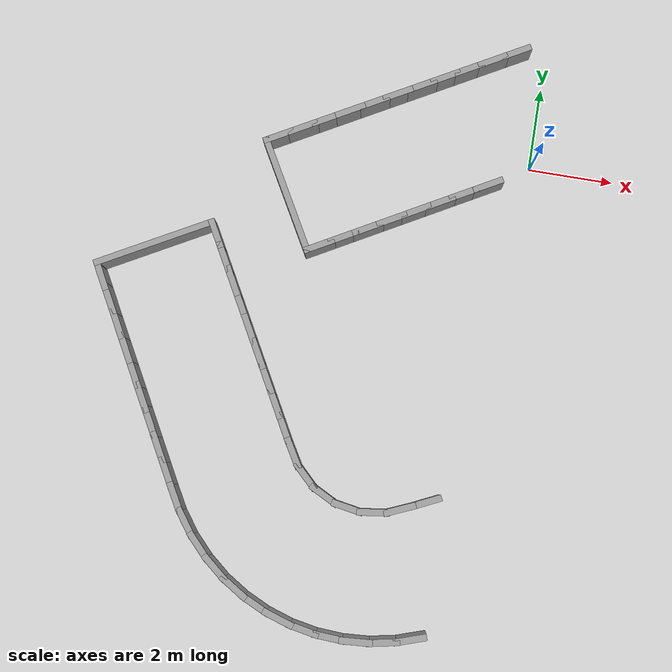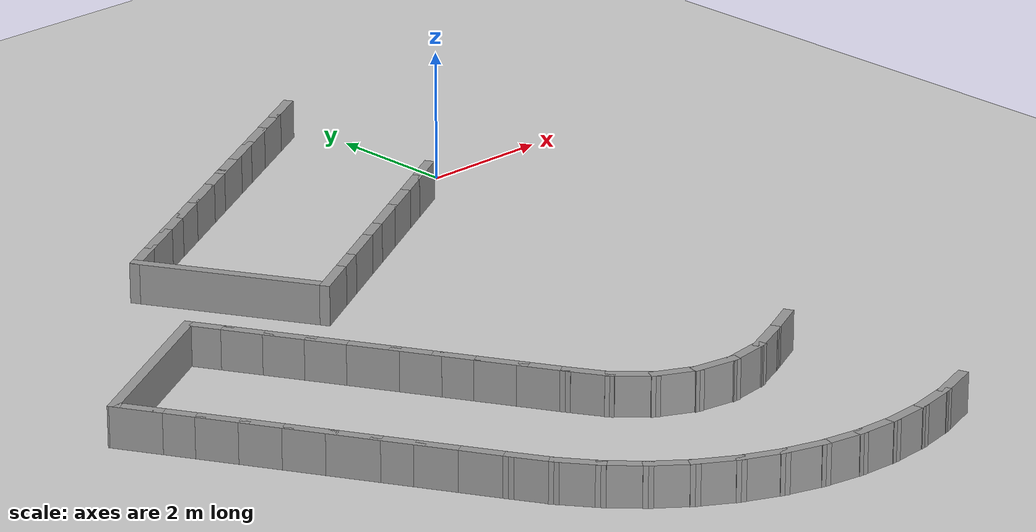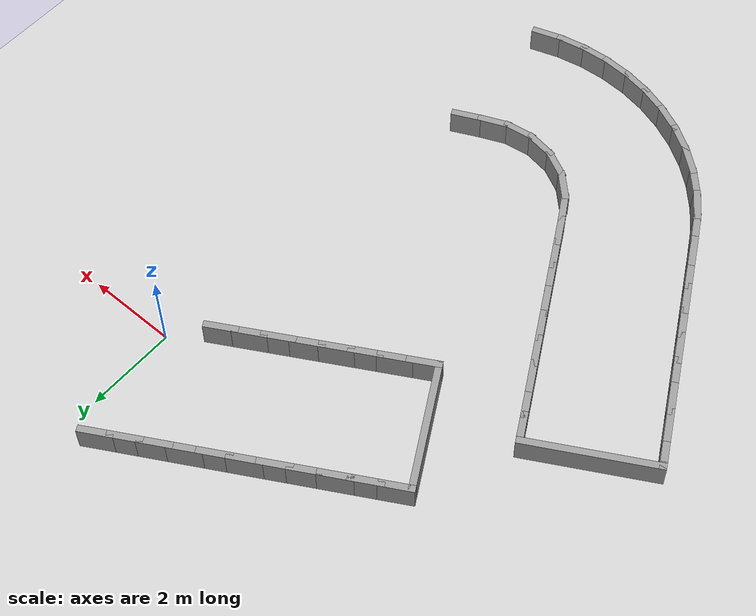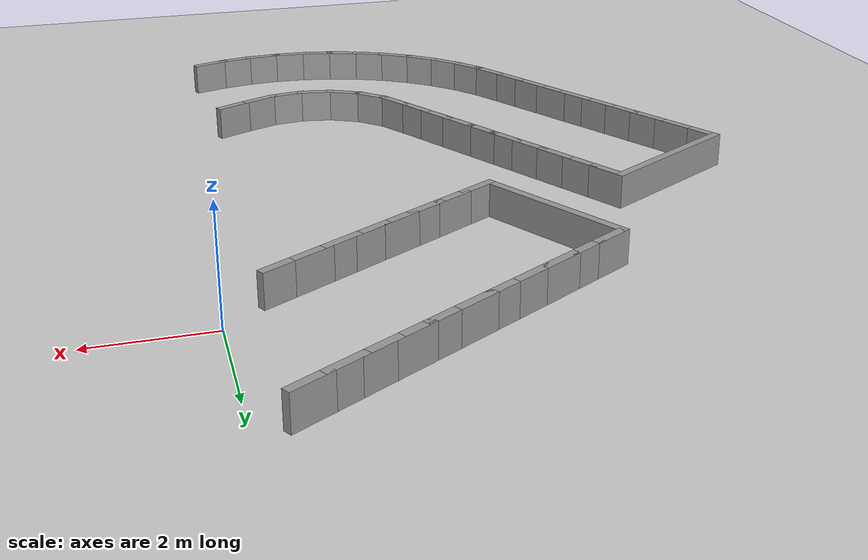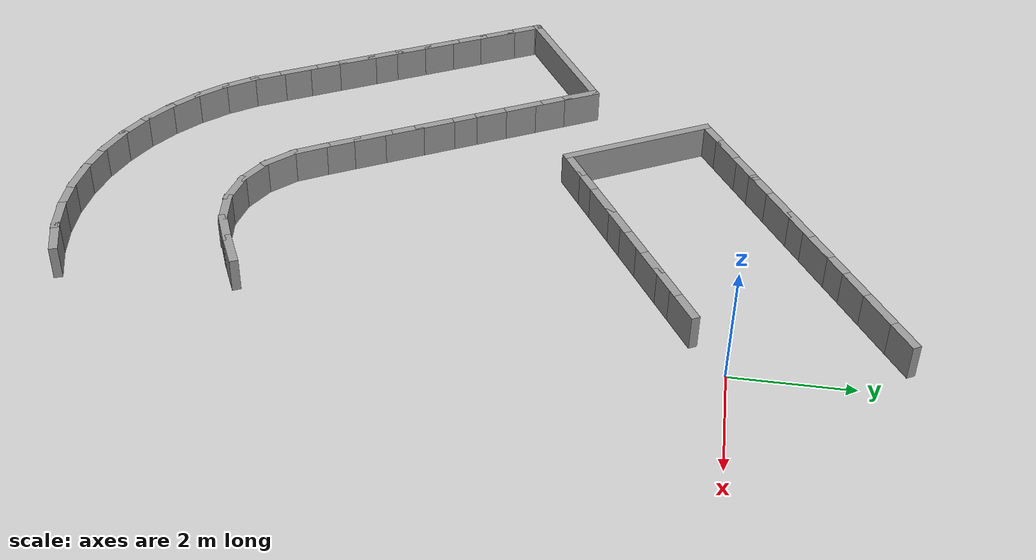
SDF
<sdf version="1.7">
 <world name="default">
  <model name="ground_plane">
   <static>1</static>
   <link name="link">
    <collision name="collision">
     <geometry><plane><normal>0 0 1</normal><size>100 100</size></plane></geometry>
     <surface><friction><ode><mu>100</mu><mu2>50</mu2></ode></friction></surface>
    </collision>
    <visual name="visual">
     <cast_shadows>0</cast_shadows>
     <geometry><plane><normal>0 0 1</normal><size>100 100</size></plane></geometry>
     <material>
      <script><uri>file://media/materials/scripts/gazebo.material</uri><name>Gazebo/Grey</name></script>
     </material>
    </visual>
   </link>
  </model>
  <model name="rand_turn_11">
   <link name="Wall_0">
    <collision name="Wall_0_Collision">
     <geometry><box><size>0.7500 0.1500 0.6000</size></box></geometry>
     <pose>0 0 0.3000 0 -0 0</pose>
    </collision>
    <visual name="Wall_0_Visual">
     <pose>0 0 0.3000 0 -0 0</pose>
     <geometry><box><size>0.7500 0.1500 0.6000</size></box></geometry>
     <material>
      <script><uri>file://media/materials/scripts/gazebo.material</uri><name>Gazebo/Grey</name></script>
      <ambient>1 1 1 1</ambient>
     </material>
    </visual>
    <pose>-5.9878 -0.3365 0 0 -0 0.51695</pose>
   </link>
   <link name="Wall_1">
    <collision name="Wall_1_Collision">
     <geometry><box><size>0.7500 0.1500 0.6000</size></box></geometry>
     <pose>0 0 0.3000 0 -0 0</pose>
    </collision>
    <visual name="Wall_1_Visual">
     <pose>0 0 0.3000 0 -0 0</pose>
     <geometry><box><size>0.7500 0.1500 0.6000</size></box></geometry>
     <material>
      <script><uri>file://media/materials/scripts/gazebo.material</uri><name>Gazebo/Grey</name></script>
      <ambient>1 1 1 1</ambient>
     </material>
    </visual>
    <pose>-5.4662 -0.0400 0 0 -0 0.51695</pose>
   </link>
   <link name="Wall_2">
    <collision name="Wall_2_Collision">
     <geometry><box><size>0.7500 0.1500 0.6000</size></box></geometry>
     <pose>0 0 0.3000 0 -0 0</pose>
    </collision>
    <visual name="Wall_2_Visual">
     <pose>0 0 0.3000 0 -0 0</pose>
     <geometry><box><size>0.7500 0.1500 0.6000</size></box></geometry>
     <material>
      <script><uri>file://media/materials/scripts/gazebo.material</uri><name>Gazebo/Grey</name></script>
      <ambient>1 1 1 1</ambient>
     </material>
    </visual>
    <pose>-4.9446 0.2566 0 0 -0 0.51695</pose>
   </link>
   <link name="Wall_3">
    <collision name="Wall_3_Collision">
     <geometry><box><size>0.7500 0.1500 0.6000</size></box></geometry>
     <pose>0 0 0.3000 0 -0 0</pose>
    </collision>
    <visual name="Wall_3_Visual">
     <pose>0 0 0.3000 0 -0 0</pose>
     <geometry><box><size>0.7500 0.1500 0.6000</size></box></geometry>
     <material>
      <script><uri>file://media/materials/scripts/gazebo.material</uri><name>Gazebo/Grey</name></script>
      <ambient>1 1 1 1</ambient>
     </material>
    </visual>
    <pose>-4.4230 0.5531 0 0 -0 0.51695</pose>
   </link>
   <link name="Wall_4">
    <collision name="Wall_4_Collision">
     <geometry><box><size>0.7500 0.1500 0.6000</size></box></geometry>
     <pose>0 0 0.3000 0 -0 0</pose>
    </collision>
    <visual name="Wall_4_Visual">
     <pose>0 0 0.3000 0 -0 0</pose>
     <geometry><box><size>0.7500 0.1500 0.6000</size></box></geometry>
     <material>
      <script><uri>file://media/materials/scripts/gazebo.material</uri><name>Gazebo/Grey</name></script>
      <ambient>1 1 1 1</ambient>
     </material>
    </visual>
    <pose>-3.9014 0.8496 0 0 -0 0.51695</pose>
   </link>
   <link name="Wall_5">
    <collision name="Wall_5_Collision">
     <geometry><box><size>0.7500 0.1500 0.6000</size></box></geometry>
     <pose>0 0 0.3000 0 -0 0</pose>
    </collision>
    <visual name="Wall_5_Visual">
     <pose>0 0 0.3000 0 -0 0</pose>
     <geometry><box><size>0.7500 0.1500 0.6000</size></box></geometry>
     <material>
      <script><uri>file://media/materials/scripts/gazebo.material</uri><name>Gazebo/Grey</name></script>
      <ambient>1 1 1 1</ambient>
     </material>
    </visual>
    <pose>-3.3798 1.1462 0 0 -0 0.51695</pose>
   </link>
   <link name="Wall_6">
    <collision name="Wall_6_Collision">
     <geometry><box><size>0.7500 0.1500 0.6000</size></box></geometry>
     <pose>0 0 0.3000 0 -0 0</pose>
    </collision>
    <visual name="Wall_6_Visual">
     <pose>0 0 0.3000 0 -0 0</pose>
     <geometry><box><size>0.7500 0.1500 0.6000</size></box></geometry>
     <material>
      <script><uri>file://media/materials/scripts/gazebo.material</uri><name>Gazebo/Grey</name></script>
      <ambient>1 1 1 1</ambient>
     </material>
    </visual>
    <pose>-2.8582 1.4427 0 0 -0 0.51695</pose>
   </link>
   <link name="Wall_7">
    <collision name="Wall_7_Collision">
     <geometry><box><size>0.7500 0.1500 0.6000</size></box></geometry>
     <pose>0 0 0.3000 0 -0 0</pose>
    </collision>
    <visual name="Wall_7_Visual">
     <pose>0 0 0.3000 0 -0 0</pose>
     <geometry><box><size>0.7500 0.1500 0.6000</size></box></geometry>
     <material>
      <script><uri>file://media/materials/scripts/gazebo.material</uri><name>Gazebo/Grey</name></script>
      <ambient>1 1 1 1</ambient>
     </material>
    </visual>
    <pose>-2.3366 1.7393 0 0 -0 0.51695</pose>
   </link>
   <link name="Wall_8">
    <collision name="Wall_8_Collision">
     <geometry><box><size>0.7500 0.1500 0.6000</size></box></geometry>
     <pose>0 0 0.3000 0 -0 0</pose>
    </collision>
    <visual name="Wall_8_Visual">
     <pose>0 0 0.3000 0 -0 0</pose>
     <geometry><box><size>0.7500 0.1500 0.6000</size></box></geometry>
     <material>
      <script><uri>file://media/materials/scripts/gazebo.material</uri><name>Gazebo/Grey</name></script>
      <ambient>1 1 1 1</ambient>
     </material>
    </visual>
    <pose>-1.8150 2.0358 0 0 -0 0.51695</pose>
   </link>
   <link name="Wall_9">
    <collision name="Wall_9_Collision">
     <geometry><box><size>0.7500 0.1500 0.6000</size></box></geometry>
     <pose>0 0 0.3000 0 -0 0</pose>
    </collision>
    <visual name="Wall_9_Visual">
     <pose>0 0 0.3000 0 -0 0</pose>
     <geometry><box><size>0.7500 0.1500 0.6000</size></box></geometry>
     <material>
      <script><uri>file://media/materials/scripts/gazebo.material</uri><name>Gazebo/Grey</name></script>
      <ambient>1 1 1 1</ambient>
     </material>
    </visual>
    <pose>-1.2934 2.3323 0 0 -0 0.51695</pose>
   </link>
   <link name="Wall_10">
    <collision name="Wall_10_Collision">
     <geometry><box><size>0.7500 0.1500 0.6000</size></box></geometry>
     <pose>0 0 0.3000 0 -0 0</pose>
    </collision>
    <visual name="Wall_10_Visual">
     <pose>0 0 0.3000 0 -0 0</pose>
     <geometry><box><size>0.7500 0.1500 0.6000</size></box></geometry>
     <material>
      <script><uri>file://media/materials/scripts/gazebo.material</uri><name>Gazebo/Grey</name></script>
      <ambient>1 1 1 1</ambient>
     </material>
    </visual>
    <pose>-0.7718 2.6289 0 0 -0 0.51695</pose>
   </link>
   <link name="Wall_77">
    <collision name="Wall_77_Collision">
     <geometry><box><size>0.7496 0.1500 0.6000</size></box></geometry>
     <pose>0 0 0.3000 0 -0 0</pose>
    </collision>
    <visual name="Wall_77_Visual">
     <pose>0 0 0.3000 0 -0 0</pose>
     <geometry><box><size>0.7496 0.1500 0.6000</size></box></geometry>
     <material>
      <script><uri>file://media/materials/scripts/gazebo.material</uri><name>Gazebo/Grey</name></script>
      <ambient>1 1 1 1</ambient>
     </material>
    </visual>
    <pose>-1.1106 -11.1781 0 0 -0 -2.81876</pose>
   </link>
   <link name="Wall_78">
    <collision name="Wall_78_Collision">
     <geometry><box><size>0.7496 0.1500 0.6000</size></box></geometry>
     <pose>0 0 0.3000 0 -0 0</pose>
    </collision>
    <visual name="Wall_78_Visual">
     <pose>0 0 0.3000 0 -0 0</pose>
     <geometry><box><size>0.7496 0.1500 0.6000</size></box></geometry>
     <material>
      <script><uri>file://media/materials/scripts/gazebo.material</uri><name>Gazebo/Grey</name></script>
      <ambient>1 1 1 1</ambient>
     </material>
    </visual>
    <pose>-1.6888 -11.3322 0 0 -0 -2.94370</pose>
   </link>
   <link name="Wall_79">
    <collision name="Wall_79_Collision">
     <geometry><box><size>0.7496 0.1500 0.6000</size></box></geometry>
     <pose>0 0 0.3000 0 -0 0</pose>
    </collision>
    <visual name="Wall_79_Visual">
     <pose>0 0 0.3000 0 -0 0</pose>
     <geometry><box><size>0.7496 0.1500 0.6000</size></box></geometry>
     <material>
      <script><uri>file://media/materials/scripts/gazebo.material</uri><name>Gazebo/Grey</name></script>
      <ambient>1 1 1 1</ambient>
     </material>
    </visual>
    <pose>-2.2817 -11.4130 0 0 -0 -3.06865</pose>
   </link>
   <link name="Wall_80">
    <collision name="Wall_80_Collision">
     <geometry><box><size>0.7496 0.1500 0.6000</size></box></geometry>
     <pose>0 0 0.3000 0 -0 0</pose>
    </collision>
    <visual name="Wall_80_Visual">
     <pose>0 0 0.3000 0 -0 0</pose>
     <geometry><box><size>0.7496 0.1500 0.6000</size></box></geometry>
     <material>
      <script><uri>file://media/materials/scripts/gazebo.material</uri><name>Gazebo/Grey</name></script>
      <ambient>1 1 1 1</ambient>
     </material>
    </visual>
    <pose>-2.8801 -11.4192 0 0 -0 3.08944</pose>
   </link>
   <link name="Wall_81">
    <collision name="Wall_81_Collision">
     <geometry><box><size>0.7496 0.1500 0.6000</size></box></geometry>
     <pose>0 0 0.3000 0 -0 0</pose>
    </collision>
    <visual name="Wall_81_Visual">
     <pose>0 0 0.3000 0 -0 0</pose>
     <geometry><box><size>0.7496 0.1500 0.6000</size></box></geometry>
     <material>
      <script><uri>file://media/materials/scripts/gazebo.material</uri><name>Gazebo/Grey</name></script>
      <ambient>1 1 1 1</ambient>
     </material>
    </visual>
    <pose>-3.4745 -11.3503 0 0 -0 2.96296</pose>
   </link>
   <link name="Wall_82">
    <collision name="Wall_82_Collision">
     <geometry><box><size>0.7496 0.1500 0.6000</size></box></geometry>
     <pose>0 0 0.3000 0 -0 0</pose>
    </collision>
    <visual name="Wall_82_Visual">
     <pose>0 0 0.3000 0 -0 0</pose>
     <geometry><box><size>0.7496 0.1500 0.6000</size></box></geometry>
     <material>
      <script><uri>file://media/materials/scripts/gazebo.material</uri><name>Gazebo/Grey</name></script>
      <ambient>1 1 1 1</ambient>
     </material>
    </visual>
    <pose>-4.0556 -11.2074 0 0 -0 2.83801</pose>
   </link>
   <link name="Wall_83">
    <collision name="Wall_83_Collision">
     <geometry><box><size>0.7496 0.1500 0.6000</size></box></geometry>
     <pose>0 0 0.3000 0 -0 0</pose>
    </collision>
    <visual name="Wall_83_Visual">
     <pose>0 0 0.3000 0 -0 0</pose>
     <geometry><box><size>0.7496 0.1500 0.6000</size></box></geometry>
     <material>
      <script><uri>file://media/materials/scripts/gazebo.material</uri><name>Gazebo/Grey</name></script>
      <ambient>1 1 1 1</ambient>
     </material>
    </visual>
    <pose>-4.6144 -10.9932 0 0 -0 2.71307</pose>
   </link>
   <link name="Wall_84">
    <collision name="Wall_84_Collision">
     <geometry><box><size>0.7496 0.1500 0.6000</size></box></geometry>
     <pose>0 0 0.3000 0 -0 0</pose>
    </collision>
    <visual name="Wall_84_Visual">
     <pose>0 0 0.3000 0 -0 0</pose>
     <geometry><box><size>0.7496 0.1500 0.6000</size></box></geometry>
     <material>
      <script><uri>file://media/materials/scripts/gazebo.material</uri><name>Gazebo/Grey</name></script>
      <ambient>1 1 1 1</ambient>
     </material>
    </visual>
    <pose>-5.1421 -10.7111 0 0 -0 2.58812</pose>
   </link>
   <link name="Wall_85">
    <collision name="Wall_85_Collision">
     <geometry><box><size>0.7496 0.1500 0.6000</size></box></geometry>
     <pose>0 0 0.3000 0 -0 0</pose>
    </collision>
    <visual name="Wall_85_Visual">
     <pose>0 0 0.3000 0 -0 0</pose>
     <geometry><box><size>0.7496 0.1500 0.6000</size></box></geometry>
     <material>
      <script><uri>file://media/materials/scripts/gazebo.material</uri><name>Gazebo/Grey</name></script>
      <ambient>1 1 1 1</ambient>
     </material>
    </visual>
    <pose>-5.6303 -10.3650 0 0 -0 2.46162</pose>
   </link>
   <link name="Wall_86">
    <collision name="Wall_86_Collision">
     <geometry><box><size>0.7496 0.1500 0.6000</size></box></geometry>
     <pose>0 0 0.3000 0 -0 0</pose>
    </collision>
    <visual name="Wall_86_Visual">
     <pose>0 0 0.3000 0 -0 0</pose>
     <geometry><box><size>0.7496 0.1500 0.6000</size></box></geometry>
     <material>
      <script><uri>file://media/materials/scripts/gazebo.material</uri><name>Gazebo/Grey</name></script>
      <ambient>1 1 1 1</ambient>
     </material>
    </visual>
    <pose>-6.0712 -9.9603 0 0 -0 2.33655</pose>
   </link>
   <link name="Wall_87">
    <collision name="Wall_87_Collision">
     <geometry><box><size>0.7496 0.1500 0.6000</size></box></geometry>
     <pose>0 0 0.3000 0 -0 0</pose>
    </collision>
    <visual name="Wall_87_Visual">
     <pose>0 0 0.3000 0 -0 0</pose>
     <geometry><box><size>0.7496 0.1500 0.6000</size></box></geometry>
     <material>
      <script><uri>file://media/materials/scripts/gazebo.material</uri><name>Gazebo/Grey</name></script>
      <ambient>1 1 1 1</ambient>
     </material>
    </visual>
    <pose>-6.4582 -9.5039 0 0 -0 2.21160</pose>
   </link>
   <link name="Wall_88">
    <collision name="Wall_88_Collision">
     <geometry><box><size>0.7498 0.1500 0.6000</size></box></geometry>
     <pose>0 0 0.3000 0 -0 0</pose>
    </collision>
    <visual name="Wall_88_Visual">
     <pose>0 0 0.3000 0 -0 0</pose>
     <geometry><box><size>0.7498 0.1500 0.6000</size></box></geometry>
     <material>
      <script><uri>file://media/materials/scripts/gazebo.material</uri><name>Gazebo/Grey</name></script>
      <ambient>1 1 1 1</ambient>
     </material>
    </visual>
    <pose>-6.7884 -9.0045 0 0 -0 2.09846</pose>
   </link>
   <link name="Wall_89">
    <collision name="Wall_89_Collision">
     <geometry><box><size>0.7500 0.1500 0.6000</size></box></geometry>
     <pose>0 0 0.3000 0 -0 0</pose>
    </collision>
    <visual name="Wall_89_Visual">
     <pose>0 0 0.3000 0 -0 0</pose>
     <geometry><box><size>0.7500 0.1500 0.6000</size></box></geometry>
     <material>
      <script><uri>file://media/materials/scripts/gazebo.material</uri><name>Gazebo/Grey</name></script>
      <ambient>1 1 1 1</ambient>
     </material>
    </visual>
    <pose>-7.0863 -8.4838 0 0 -0 2.08235</pose>
   </link>
   <link name="Wall_90">
    <collision name="Wall_90_Collision">
     <geometry><box><size>0.7500 0.1500 0.6000</size></box></geometry>
     <pose>0 0 0.3000 0 -0 0</pose>
    </collision>
    <visual name="Wall_90_Visual">
     <pose>0 0 0.3000 0 -0 0</pose>
     <geometry><box><size>0.7500 0.1500 0.6000</size></box></geometry>
     <material>
      <script><uri>file://media/materials/scripts/gazebo.material</uri><name>Gazebo/Grey</name></script>
      <ambient>1 1 1 1</ambient>
     </material>
    </visual>
    <pose>-7.3800 -7.9606 0 0 -0 2.08235</pose>
   </link>
   <link name="Wall_91">
    <collision name="Wall_91_Collision">
     <geometry><box><size>0.7500 0.1500 0.6000</size></box></geometry>
     <pose>0 0 0.3000 0 -0 0</pose>
    </collision>
    <visual name="Wall_91_Visual">
     <pose>0 0 0.3000 0 -0 0</pose>
     <geometry><box><size>0.7500 0.1500 0.6000</size></box></geometry>
     <material>
      <script><uri>file://media/materials/scripts/gazebo.material</uri><name>Gazebo/Grey</name></script>
      <ambient>1 1 1 1</ambient>
     </material>
    </visual>
    <pose>-7.6737 -7.4374 0 0 -0 2.08235</pose>
   </link>
   <link name="Wall_92">
    <collision name="Wall_92_Collision">
     <geometry><box><size>0.7500 0.1500 0.6000</size></box></geometry>
     <pose>0 0 0.3000 0 -0 0</pose>
    </collision>
    <visual name="Wall_92_Visual">
     <pose>0 0 0.3000 0 -0 0</pose>
     <geometry><box><size>0.7500 0.1500 0.6000</size></box></geometry>
     <material>
      <script><uri>file://media/materials/scripts/gazebo.material</uri><name>Gazebo/Grey</name></script>
      <ambient>1 1 1 1</ambient>
     </material>
    </visual>
    <pose>-7.9675 -6.9142 0 0 -0 2.08235</pose>
   </link>
   <link name="Wall_93">
    <collision name="Wall_93_Collision">
     <geometry><box><size>0.7500 0.1500 0.6000</size></box></geometry>
     <pose>0 0 0.3000 0 -0 0</pose>
    </collision>
    <visual name="Wall_93_Visual">
     <pose>0 0 0.3000 0 -0 0</pose>
     <geometry><box><size>0.7500 0.1500 0.6000</size></box></geometry>
     <material>
      <script><uri>file://media/materials/scripts/gazebo.material</uri><name>Gazebo/Grey</name></script>
      <ambient>1 1 1 1</ambient>
     </material>
    </visual>
    <pose>-8.2612 -6.3910 0 0 -0 2.08235</pose>
   </link>
   <link name="Wall_94">
    <collision name="Wall_94_Collision">
     <geometry><box><size>0.7500 0.1500 0.6000</size></box></geometry>
     <pose>0 0 0.3000 0 -0 0</pose>
    </collision>
    <visual name="Wall_94_Visual">
     <pose>0 0 0.3000 0 -0 0</pose>
     <geometry><box><size>0.7500 0.1500 0.6000</size></box></geometry>
     <material>
      <script><uri>file://media/materials/scripts/gazebo.material</uri><name>Gazebo/Grey</name></script>
      <ambient>1 1 1 1</ambient>
     </material>
    </visual>
    <pose>-8.5549 -5.8678 0 0 -0 2.08235</pose>
   </link>
   <link name="Wall_95">
    <collision name="Wall_95_Collision">
     <geometry><box><size>0.7500 0.1500 0.6000</size></box></geometry>
     <pose>0 0 0.3000 0 -0 0</pose>
    </collision>
    <visual name="Wall_95_Visual">
     <pose>0 0 0.3000 0 -0 0</pose>
     <geometry><box><size>0.7500 0.1500 0.6000</size></box></geometry>
     <material>
      <script><uri>file://media/materials/scripts/gazebo.material</uri><name>Gazebo/Grey</name></script>
      <ambient>1 1 1 1</ambient>
     </material>
    </visual>
    <pose>-8.8486 -5.3446 0 0 -0 2.08235</pose>
   </link>
   <link name="Wall_96">
    <collision name="Wall_96_Collision">
     <geometry><box><size>0.7500 0.1500 0.6000</size></box></geometry>
     <pose>0 0 0.3000 0 -0 0</pose>
    </collision>
    <visual name="Wall_96_Visual">
     <pose>0 0 0.3000 0 -0 0</pose>
     <geometry><box><size>0.7500 0.1500 0.6000</size></box></geometry>
     <material>
      <script><uri>file://media/materials/scripts/gazebo.material</uri><name>Gazebo/Grey</name></script>
      <ambient>1 1 1 1</ambient>
     </material>
    </visual>
    <pose>-9.1423 -4.8214 0 0 -0 2.08235</pose>
   </link>
   <link name="Wall_97">
    <collision name="Wall_97_Collision">
     <geometry><box><size>0.7500 0.1500 0.6000</size></box></geometry>
     <pose>0 0 0.3000 0 -0 0</pose>
    </collision>
    <visual name="Wall_97_Visual">
     <pose>0 0 0.3000 0 -0 0</pose>
     <geometry><box><size>0.7500 0.1500 0.6000</size></box></geometry>
     <material>
      <script><uri>file://media/materials/scripts/gazebo.material</uri><name>Gazebo/Grey</name></script>
      <ambient>1 1 1 1</ambient>
     </material>
    </visual>
    <pose>-9.4361 -4.2983 0 0 -0 2.08235</pose>
   </link>
   <link name="Wall_98">
    <collision name="Wall_98_Collision">
     <geometry><box><size>0.1730 0.1500 0.6000</size></box></geometry>
     <pose>0 0 0.3000 0 -0 0</pose>
    </collision>
    <visual name="Wall_98_Visual">
     <pose>0 0 0.3000 0 -0 0</pose>
     <geometry><box><size>0.1730 0.1500 0.6000</size></box></geometry>
     <material>
      <script><uri>file://media/materials/scripts/gazebo.material</uri><name>Gazebo/Grey</name></script>
      <ambient>1 1 1 1</ambient>
     </material>
    </visual>
    <pose>-9.5886 -4.0266 0 0 -0 2.08235</pose>
   </link>
   <link name="Wall_99">
    <collision name="Wall_99_Collision">
     <geometry><box><size>0.7500 0.1500 0.6000</size></box></geometry>
     <pose>0 0 0.3000 0 -0 0</pose>
    </collision>
    <visual name="Wall_99_Visual">
     <pose>0 0 0.3000 0 -0 0</pose>
     <geometry><box><size>0.7500 0.1500 0.6000</size></box></geometry>
     <material>
      <script><uri>file://media/materials/scripts/gazebo.material</uri><name>Gazebo/Grey</name></script>
      <ambient>1 1 1 1</ambient>
     </material>
    </visual>
    <pose>-4.5999 -2.7778 0 0 -0 0.51695</pose>
   </link>
   <link name="Wall_100">
    <collision name="Wall_100_Collision">
     <geometry><box><size>0.7500 0.1500 0.6000</size></box></geometry>
     <pose>0 0 0.3000 0 -0 0</pose>
    </collision>
    <visual name="Wall_100_Visual">
     <pose>0 0 0.3000 0 -0 0</pose>
     <geometry><box><size>0.7500 0.1500 0.6000</size></box></geometry>
     <material>
      <script><uri>file://media/materials/scripts/gazebo.material</uri><name>Gazebo/Grey</name></script>
      <ambient>1 1 1 1</ambient>
     </material>
    </visual>
    <pose>-4.0783 -2.4812 0 0 -0 0.51695</pose>
   </link>
   <link name="Wall_101">
    <collision name="Wall_101_Collision">
     <geometry><box><size>0.7500 0.1500 0.6000</size></box></geometry>
     <pose>0 0 0.3000 0 -0 0</pose>
    </collision>
    <visual name="Wall_101_Visual">
     <pose>0 0 0.3000 0 -0 0</pose>
     <geometry><box><size>0.7500 0.1500 0.6000</size></box></geometry>
     <material>
      <script><uri>file://media/materials/scripts/gazebo.material</uri><name>Gazebo/Grey</name></script>
      <ambient>1 1 1 1</ambient>
     </material>
    </visual>
    <pose>-3.5567 -2.1847 0 0 -0 0.51695</pose>
   </link>
   <link name="Wall_102">
    <collision name="Wall_102_Collision">
     <geometry><box><size>0.7500 0.1500 0.6000</size></box></geometry>
     <pose>0 0 0.3000 0 -0 0</pose>
    </collision>
    <visual name="Wall_102_Visual">
     <pose>0 0 0.3000 0 -0 0</pose>
     <geometry><box><size>0.7500 0.1500 0.6000</size></box></geometry>
     <material>
      <script><uri>file://media/materials/scripts/gazebo.material</uri><name>Gazebo/Grey</name></script>
      <ambient>1 1 1 1</ambient>
     </material>
    </visual>
    <pose>-3.0351 -1.8881 0 0 -0 0.51695</pose>
   </link>
   <link name="Wall_103">
    <collision name="Wall_103_Collision">
     <geometry><box><size>0.7500 0.1500 0.6000</size></box></geometry>
     <pose>0 0 0.3000 0 -0 0</pose>
    </collision>
    <visual name="Wall_103_Visual">
     <pose>0 0 0.3000 0 -0 0</pose>
     <geometry><box><size>0.7500 0.1500 0.6000</size></box></geometry>
     <material>
      <script><uri>file://media/materials/scripts/gazebo.material</uri><name>Gazebo/Grey</name></script>
      <ambient>1 1 1 1</ambient>
     </material>
    </visual>
    <pose>-2.5135 -1.5916 0 0 -0 0.51695</pose>
   </link>
   <link name="Wall_104">
    <collision name="Wall_104_Collision">
     <geometry><box><size>0.7500 0.1500 0.6000</size></box></geometry>
     <pose>0 0 0.3000 0 -0 0</pose>
    </collision>
    <visual name="Wall_104_Visual">
     <pose>0 0 0.3000 0 -0 0</pose>
     <geometry><box><size>0.7500 0.1500 0.6000</size></box></geometry>
     <material>
      <script><uri>file://media/materials/scripts/gazebo.material</uri><name>Gazebo/Grey</name></script>
      <ambient>1 1 1 1</ambient>
     </material>
    </visual>
    <pose>-1.9919 -1.2951 0 0 -0 0.51695</pose>
   </link>
   <link name="Wall_105">
    <collision name="Wall_105_Collision">
     <geometry><box><size>0.7500 0.1500 0.6000</size></box></geometry>
     <pose>0 0 0.3000 0 -0 0</pose>
    </collision>
    <visual name="Wall_105_Visual">
     <pose>0 0 0.3000 0 -0 0</pose>
     <geometry><box><size>0.7500 0.1500 0.6000</size></box></geometry>
     <material>
      <script><uri>file://media/materials/scripts/gazebo.material</uri><name>Gazebo/Grey</name></script>
      <ambient>1 1 1 1</ambient>
     </material>
    </visual>
    <pose>-1.4703 -0.9985 0 0 -0 0.51695</pose>
   </link>
   <link name="Wall_106">
    <collision name="Wall_106_Collision">
     <geometry><box><size>0.7500 0.1500 0.6000</size></box></geometry>
     <pose>0 0 0.3000 0 -0 0</pose>
    </collision>
    <visual name="Wall_106_Visual">
     <pose>0 0 0.3000 0 -0 0</pose>
     <geometry><box><size>0.7500 0.1500 0.6000</size></box></geometry>
     <material>
      <script><uri>file://media/materials/scripts/gazebo.material</uri><name>Gazebo/Grey</name></script>
      <ambient>1 1 1 1</ambient>
     </material>
    </visual>
    <pose>-0.9487 -0.7020 0 0 -0 0.51695</pose>
   </link>
   <link name="Wall_159">
    <collision name="Wall_159_Collision">
     <geometry><box><size>0.7500 0.1500 0.6000</size></box></geometry>
     <pose>0 0 0.3000 0 -0 0</pose>
    </collision>
    <visual name="Wall_159_Visual">
     <pose>0 0 0.3000 0 -0 0</pose>
     <geometry><box><size>0.7500 0.1500 0.6000</size></box></geometry>
     <material>
      <script><uri>file://media/materials/scripts/gazebo.material</uri><name>Gazebo/Grey</name></script>
      <ambient>1 1 1 1</ambient>
     </material>
    </visual>
    <pose>-1.2409 -8.1777 0 0 -0 -2.69464</pose>
   </link>
   <link name="Wall_160">
    <collision name="Wall_160_Collision">
     <geometry><box><size>0.7492 0.1500 0.6000</size></box></geometry>
     <pose>0 0 0.3000 0 -0 0</pose>
    </collision>
    <visual name="Wall_160_Visual">
     <pose>0 0 0.3000 0 -0 0</pose>
     <geometry><box><size>0.7492 0.1500 0.6000</size></box></geometry>
     <material>
      <script><uri>file://media/materials/scripts/gazebo.material</uri><name>Gazebo/Grey</name></script>
      <ambient>1 1 1 1</ambient>
     </material>
    </visual>
    <pose>-1.7867 -8.4257 0 0 -0 -2.73528</pose>
   </link>
   <link name="Wall_161">
    <collision name="Wall_161_Collision">
     <geometry><box><size>0.7477 0.1500 0.6000</size></box></geometry>
     <pose>0 0 0.3000 0 -0 0</pose>
    </collision>
    <visual name="Wall_161_Visual">
     <pose>0 0 0.3000 0 -0 0</pose>
     <geometry><box><size>0.7477 0.1500 0.6000</size></box></geometry>
     <material>
      <script><uri>file://media/materials/scripts/gazebo.material</uri><name>Gazebo/Grey</name></script>
      <ambient>1 1 1 1</ambient>
     </material>
    </visual>
    <pose>-2.3579 -8.5855 0 0 -0 -3.00279</pose>
   </link>
   <link name="Wall_162">
    <collision name="Wall_162_Collision">
     <geometry><box><size>0.7477 0.1500 0.6000</size></box></geometry>
     <pose>0 0 0.3000 0 -0 0</pose>
    </collision>
    <visual name="Wall_162_Visual">
     <pose>0 0 0.3000 0 -0 0</pose>
     <geometry><box><size>0.7477 0.1500 0.6000</size></box></geometry>
     <material>
      <script><uri>file://media/materials/scripts/gazebo.material</uri><name>Gazebo/Grey</name></script>
      <ambient>1 1 1 1</ambient>
     </material>
    </visual>
    <pose>-2.9486 -8.5780 0 0 -0 2.97733</pose>
   </link>
   <link name="Wall_163">
    <collision name="Wall_163_Collision">
     <geometry><box><size>0.7477 0.1500 0.6000</size></box></geometry>
     <pose>0 0 0.3000 0 -0 0</pose>
    </collision>
    <visual name="Wall_163_Visual">
     <pose>0 0 0.3000 0 -0 0</pose>
     <geometry><box><size>0.7477 0.1500 0.6000</size></box></geometry>
     <material>
      <script><uri>file://media/materials/scripts/gazebo.material</uri><name>Gazebo/Grey</name></script>
      <ambient>1 1 1 1</ambient>
     </material>
    </visual>
    <pose>-3.5102 -8.3944 0 0 -0 2.67407</pose>
   </link>
   <link name="Wall_164">
    <collision name="Wall_164_Collision">
     <geometry><box><size>0.7477 0.1500 0.6000</size></box></geometry>
     <pose>0 0 0.3000 0 -0 0</pose>
    </collision>
    <visual name="Wall_164_Visual">
     <pose>0 0 0.3000 0 -0 0</pose>
     <geometry><box><size>0.7477 0.1500 0.6000</size></box></geometry>
     <material>
      <script><uri>file://media/materials/scripts/gazebo.material</uri><name>Gazebo/Grey</name></script>
      <ambient>1 1 1 1</ambient>
     </material>
    </visual>
    <pose>-3.9913 -8.0515 0 0 -0 2.37045</pose>
   </link>
   <link name="Wall_165">
    <collision name="Wall_165_Collision">
     <geometry><box><size>0.7494 0.1500 0.6000</size></box></geometry>
     <pose>0 0 0.3000 0 -0 0</pose>
    </collision>
    <visual name="Wall_165_Visual">
     <pose>0 0 0.3000 0 -0 0</pose>
     <geometry><box><size>0.7494 0.1500 0.6000</size></box></geometry>
     <material>
      <script><uri>file://media/materials/scripts/gazebo.material</uri><name>Gazebo/Grey</name></script>
      <ambient>1 1 1 1</ambient>
     </material>
    </visual>
    <pose>-4.3598 -7.5862 0 0 -0 2.11124</pose>
   </link>
   <link name="Wall_166">
    <collision name="Wall_166_Collision">
     <geometry><box><size>0.7500 0.1500 0.6000</size></box></geometry>
     <pose>0 0 0.3000 0 -0 0</pose>
    </collision>
    <visual name="Wall_166_Visual">
     <pose>0 0 0.3000 0 -0 0</pose>
     <geometry><box><size>0.7500 0.1500 0.6000</size></box></geometry>
     <material>
      <script><uri>file://media/materials/scripts/gazebo.material</uri><name>Gazebo/Grey</name></script>
      <ambient>1 1 1 1</ambient>
     </material>
    </visual>
    <pose>-4.6609 -7.0676 0 0 -0 2.08235</pose>
   </link>
   <link name="Wall_167">
    <collision name="Wall_167_Collision">
     <geometry><box><size>0.7500 0.1500 0.6000</size></box></geometry>
     <pose>0 0 0.3000 0 -0 0</pose>
    </collision>
    <visual name="Wall_167_Visual">
     <pose>0 0 0.3000 0 -0 0</pose>
     <geometry><box><size>0.7500 0.1500 0.6000</size></box></geometry>
     <material>
      <script><uri>file://media/materials/scripts/gazebo.material</uri><name>Gazebo/Grey</name></script>
      <ambient>1 1 1 1</ambient>
     </material>
    </visual>
    <pose>-4.9546 -6.5444 0 0 -0 2.08235</pose>
   </link>
   <link name="Wall_168">
    <collision name="Wall_168_Collision">
     <geometry><box><size>0.7500 0.1500 0.6000</size></box></geometry>
     <pose>0 0 0.3000 0 -0 0</pose>
    </collision>
    <visual name="Wall_168_Visual">
     <pose>0 0 0.3000 0 -0 0</pose>
     <geometry><box><size>0.7500 0.1500 0.6000</size></box></geometry>
     <material>
      <script><uri>file://media/materials/scripts/gazebo.material</uri><name>Gazebo/Grey</name></script>
      <ambient>1 1 1 1</ambient>
     </material>
    </visual>
    <pose>-5.2483 -6.0212 0 0 -0 2.08235</pose>
   </link>
   <link name="Wall_169">
    <collision name="Wall_169_Collision">
     <geometry><box><size>0.7500 0.1500 0.6000</size></box></geometry>
     <pose>0 0 0.3000 0 -0 0</pose>
    </collision>
    <visual name="Wall_169_Visual">
     <pose>0 0 0.3000 0 -0 0</pose>
     <geometry><box><size>0.7500 0.1500 0.6000</size></box></geometry>
     <material>
      <script><uri>file://media/materials/scripts/gazebo.material</uri><name>Gazebo/Grey</name></script>
      <ambient>1 1 1 1</ambient>
     </material>
    </visual>
    <pose>-5.5420 -5.4981 0 0 -0 2.08235</pose>
   </link>
   <link name="Wall_170">
    <collision name="Wall_170_Collision">
     <geometry><box><size>0.7500 0.1500 0.6000</size></box></geometry>
     <pose>0 0 0.3000 0 -0 0</pose>
    </collision>
    <visual name="Wall_170_Visual">
     <pose>0 0 0.3000 0 -0 0</pose>
     <geometry><box><size>0.7500 0.1500 0.6000</size></box></geometry>
     <material>
      <script><uri>file://media/materials/scripts/gazebo.material</uri><name>Gazebo/Grey</name></script>
      <ambient>1 1 1 1</ambient>
     </material>
    </visual>
    <pose>-5.8358 -4.9749 0 0 -0 2.08235</pose>
   </link>
   <link name="Wall_171">
    <collision name="Wall_171_Collision">
     <geometry><box><size>0.7500 0.1500 0.6000</size></box></geometry>
     <pose>0 0 0.3000 0 -0 0</pose>
    </collision>
    <visual name="Wall_171_Visual">
     <pose>0 0 0.3000 0 -0 0</pose>
     <geometry><box><size>0.7500 0.1500 0.6000</size></box></geometry>
     <material>
      <script><uri>file://media/materials/scripts/gazebo.material</uri><name>Gazebo/Grey</name></script>
      <ambient>1 1 1 1</ambient>
     </material>
    </visual>
    <pose>-6.1295 -4.4517 0 0 -0 2.08235</pose>
   </link>
   <link name="Wall_172">
    <collision name="Wall_172_Collision">
     <geometry><box><size>0.7500 0.1500 0.6000</size></box></geometry>
     <pose>0 0 0.3000 0 -0 0</pose>
    </collision>
    <visual name="Wall_172_Visual">
     <pose>0 0 0.3000 0 -0 0</pose>
     <geometry><box><size>0.7500 0.1500 0.6000</size></box></geometry>
     <material>
      <script><uri>file://media/materials/scripts/gazebo.material</uri><name>Gazebo/Grey</name></script>
      <ambient>1 1 1 1</ambient>
     </material>
    </visual>
    <pose>-6.4232 -3.9285 0 0 -0 2.08235</pose>
   </link>
   <link name="Wall_173">
    <collision name="Wall_173_Collision">
     <geometry><box><size>0.7500 0.1500 0.6000</size></box></geometry>
     <pose>0 0 0.3000 0 -0 0</pose>
    </collision>
    <visual name="Wall_173_Visual">
     <pose>0 0 0.3000 0 -0 0</pose>
     <geometry><box><size>0.7500 0.1500 0.6000</size></box></geometry>
     <material>
      <script><uri>file://media/materials/scripts/gazebo.material</uri><name>Gazebo/Grey</name></script>
      <ambient>1 1 1 1</ambient>
     </material>
    </visual>
    <pose>-6.7169 -3.4053 0 0 -0 2.08235</pose>
   </link>
   <link name="Wall_174">
    <collision name="Wall_174_Collision">
     <geometry><box><size>0.7255 0.1500 0.6000</size></box></geometry>
     <pose>0 0 0.3000 0 -0 0</pose>
    </collision>
    <visual name="Wall_174_Visual">
     <pose>0 0 0.3000 0 -0 0</pose>
     <geometry><box><size>0.7255 0.1500 0.6000</size></box></geometry>
     <material>
      <script><uri>file://media/materials/scripts/gazebo.material</uri><name>Gazebo/Grey</name></script>
      <ambient>1 1 1 1</ambient>
     </material>
    </visual>
    <pose>-7.0046 -2.8928 0 0 -0 2.08235</pose>
   </link>
   <link name="Wall_175">
    <collision name="Wall_175_Collision">
     <geometry><box><size>2.9582 0.1500 0.6000</size></box></geometry>
     <pose>0 0 0.3000 0 -0 0</pose>
    </collision>
    <visual name="Wall_175_Visual">
     <pose>0 0 0.3000 0 -0 0</pose>
     <geometry><box><size>2.9582 0.1500 0.6000</size></box></geometry>
     <material>
      <script><uri>file://media/materials/scripts/gazebo.material</uri><name>Gazebo/Grey</name></script>
      <ambient>1 1 1 1</ambient>
     </material>
    </visual>
    <pose>-5.5546 -1.7054 0 0 -0 2.08775</pose>
   </link>
   <link name="Wall_176">
    <collision name="Wall_176_Collision">
     <geometry><box><size>2.9582 0.1500 0.6000</size></box></geometry>
     <pose>0 0 0.3000 0 -0 0</pose>
    </collision>
    <visual name="Wall_176_Visual">
     <pose>0 0 0.3000 0 -0 0</pose>
     <geometry><box><size>2.9582 0.1500 0.6000</size></box></geometry>
     <material>
      <script><uri>file://media/materials/scripts/gazebo.material</uri><name>Gazebo/Grey</name></script>
      <ambient>1 1 1 1</ambient>
     </material>
    </visual>
    <pose>-8.3699 -3.3292 0 0 -0 0.51156</pose>
   </link>
   <static>1</static>
  </model>
 </world>
</sdf>
